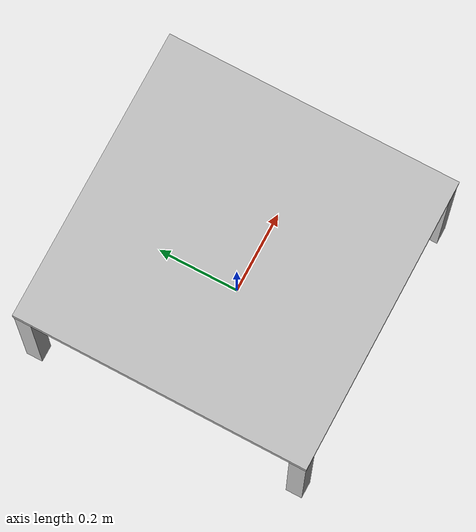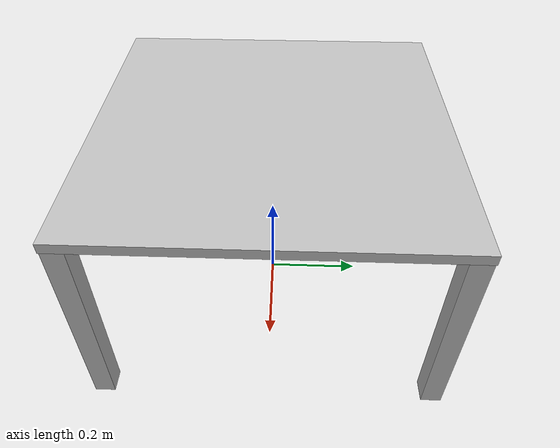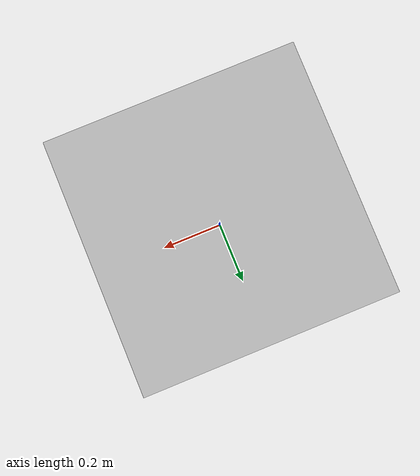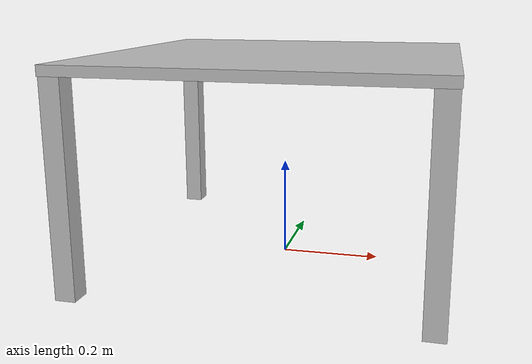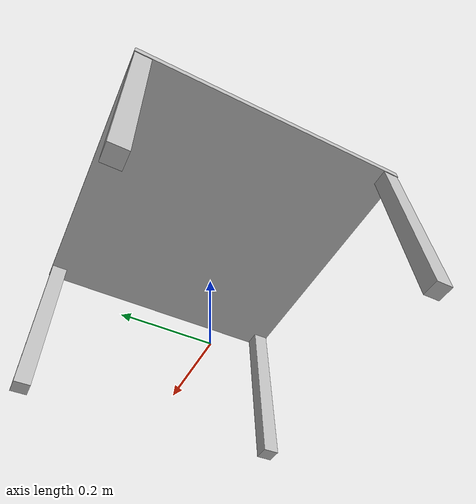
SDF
<?xml version="1.0"?>
<sdf version="1.6">
  <model name="rwc2016/table_salon">
    <link name="1_link">
      <collision name="1_col">
        <geometry>
          <box>
            <size>0.703 0.703 0.02</size>
          </box>
        </geometry>
      </collision>
      <visual name="1_vis">
        <geometry>
          <box>
            <size>0.703 0.703 0.02</size>
          </box>
        </geometry>
        <material>
          <ambient>0.75 0.75 0.75 1</ambient>
        </material>
      </visual>
      <pose>0 0 0.421 0 0 0</pose>
    </link>
    <link name="2_link">
      <collision name="2_col">
        <geometry>
          <box>
            <size>0.04 0.04 0.411</size>
          </box>
        </geometry>
      </collision>
      <visual name="2_vis">
        <geometry>
          <box>
            <size>0.04 0.04 0.411</size>
          </box>
        </geometry>
        <material>
          <ambient>0.75 0.75 0.75 1</ambient>
        </material>
      </visual>
      <pose>-0.33 -0.33 0.2055 0 0 0</pose>
    </link>
    <link name="3_link">
      <collision name="3_col">
        <geometry>
          <box>
            <size>0.04 0.04 0.411</size>
          </box>
        </geometry>
      </collision>
      <visual name="3_vis">
        <geometry>
          <box>
            <size>0.04 0.04 0.411</size>
          </box>
        </geometry>
        <material>
          <ambient>0.75 0.75 0.75 1</ambient>
        </material>
      </visual>
      <pose>0.33 -0.33 0.2055 0 0 0</pose>
    </link>
    <link name="4_link">
      <collision name="4_col">
        <geometry>
          <box>
            <size>0.04 0.04 0.411</size>
          </box>
        </geometry>
      </collision>
      <visual name="4_vis">
        <geometry>
          <box>
            <size>0.04 0.04 0.411</size>
          </box>
        </geometry>
        <material>
          <ambient>0.75 0.75 0.75 1</ambient>
        </material>
      </visual>
      <pose>-0.33 0.33 0.2055 0 0 0</pose>
    </link>
    <link name="5_link">
      <collision name="5_col">
        <geometry>
          <box>
            <size>0.04 0.04 0.411</size>
          </box>
        </geometry>
      </collision>
      <visual name="5_vis">
        <geometry>
          <box>
            <size>0.04 0.04 0.411</size>
          </box>
        </geometry>
        <material>
          <ambient>0.75 0.75 0.75 1</ambient>
        </material>
      </visual>
      <pose>0.33 0.33 0.2055 0 0 0</pose>
    </link>
    <link name="on_top_of">
      <virtual_volume name="on_top_of_vv">
        <geometry>
          <box>
            <size>0.643 0.643 0.25</size>
          </box>
        </geometry>
        <pose>0.0 0.0 0.576 0 0 0</pose>
      </virtual_volume>
    </link>
    <link name="in_front_of">
      <virtual_volume name="in_front_of_vv">
        <geometry>
          <box>
            <size>2.0 2.0 0.01</size>
          </box>
        </geometry>
        <pose>0.0 0.0 0.005 0 0 0</pose>
      </virtual_volume>
    </link>
    <static>true</static>
  </model>
</sdf>
